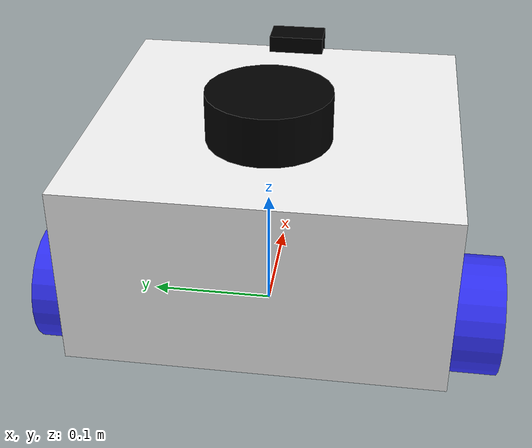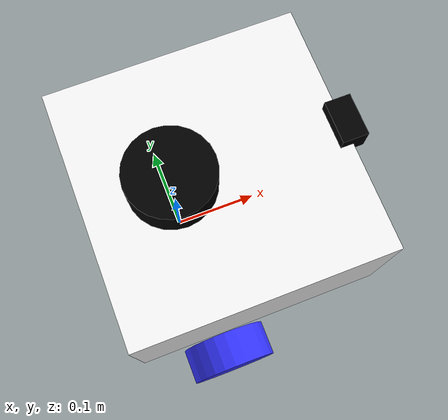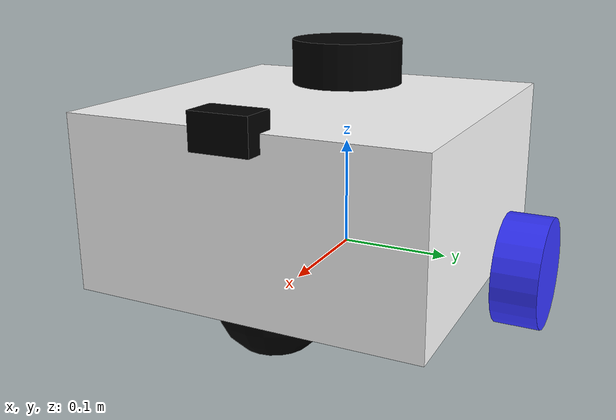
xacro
<?xml version="1.0"?>
<robot xmlns:xacro="http://www.ros.org/wiki/xacro" >

    <xacro:include filename="inertial_macros.xacro"/>

    <material name="white">
        <color rgba="1 1 1 1" />
    </material>

    <material name="orange">
        <color rgba="1 0.3 0.1 1"/>
    </material>

    <material name="blue">
        <color rgba="0.2 0.2 1 1"/>
    </material>

    <material name="black">
        <color rgba="0 0 0 1"/>
    </material>

    <!-- BASE LINK -->

    <link name="base_link">

    </link>

    <!-- CHASSIS LINK -->

    <joint name="chassis_joint" type="fixed">
        <parent link="base_link"/>
        <child link="chassis"/>
        <origin xyz="-0.1 0 0"/>
    </joint>

    <link name="chassis">
        <visual>
            <origin xyz="0.15 0 0.075"/>
            <geometry>
                <box size="0.3 0.3 0.15"/>
            </geometry>
            <material name="white"/>
        </visual>
        <collision>
            <origin xyz="0.15 0 0.075"/>
            <geometry>
                <box size="0.3 0.3 0.15"/>
            </geometry>
        </collision>
        <xacro:inertial_box mass="0.5" x="0.3" y="0.3" z="0.15">
            <origin xyz="0.15 0 0.075" rpy="0 0 0"/>
        </xacro:inertial_box>
    </link>

    <gazebo reference="chassis">
        <material>Gazebo/White</material>
    </gazebo>

    <!-- LEFT WHEEL LINK -->

    <joint name="left_wheel_joint" type="continuous">
        <parent link="base_link"/>
        <child link="left_wheel"/>
        <origin xyz="0 0.175 0" rpy="-${pi/2} 0 0" />
        <axis xyz="0 0 1"/>
    </joint>

    <link name="left_wheel">
        <visual>
            <geometry>
                <cylinder radius="0.05" length="0.04"/>
            </geometry>
            <material name="blue"/>
        </visual>
        <collision>
            <geometry>
                <cylinder radius="0.05" length="0.04"/>
            </geometry>
        </collision>
        <xacro:inertial_cylinder mass="0.1" length="0.04" radius="0.05">
            <origin xyz="0 0 0" rpy="0 0 0"/>
        </xacro:inertial_cylinder>
    </link>

    <gazebo reference="left_wheel">
        <material>Gazebo/Blue</material>
    </gazebo>

    <!-- RIGHT WHEEL LINK -->

    <joint name="right_wheel_joint" type="continuous">
        <parent link="base_link"/>
        <child link="right_wheel"/>
        <origin xyz="0 -0.175 0" rpy="${pi/2} 0 0" />
        <axis xyz="0 0 -1"/>
    </joint>

    <link name="right_wheel">
        <visual>
            <geometry>
                <cylinder radius="0.05" length="0.04"/>
            </geometry>
            <material name="blue"/>
        </visual>
        <collision>
            <geometry>
                <cylinder radius="0.05" length="0.04"/>
            </geometry>
        </collision>
        <xacro:inertial_cylinder mass="0.1" length="0.04" radius="0.05">
            <origin xyz="0 0 0" rpy="0 0 0"/>
        </xacro:inertial_cylinder>
    </link>

    <gazebo reference="right_wheel">
        <material>Gazebo/Blue</material>
    </gazebo>

    <!-- CASTER WHEEL LINK -->

    <joint name="caster_wheel_joint" type="fixed">
        <parent link="chassis"/>
        <child link="caster_wheel"/>
        <origin xyz="0.24 0 0"/>
    </joint>

    <link name="caster_wheel">
        <visual>
            <geometry>
                <sphere radius="0.05"/>
            </geometry>
            <material name="black"/>
        </visual>
        <collision>
            <geometry>
                <sphere radius="0.05"/>
            </geometry>
        </collision>
        <xacro:inertial_sphere mass="0.1" radius="0.05">
            <origin xyz="0 0 0" rpy="0 0 0"/>
        </xacro:inertial_sphere>
    </link>

    <gazebo reference="caster_wheel">
        <material>Gazebo/Black</material>
        <mu1 value="0.001"/>
        <mu2 value="0.001"/>
    </gazebo>
<!-- ==================== CAMERA ADDITION ==================== -->

    <!-- Camera Joint: Positioned at the front-top center of the chassis box -->
    <joint name="camera_joint" type="fixed">
        <parent link="chassis"/>
        <child link="camera_link"/>
        <origin xyz="0.30 0 0.15" rpy="0 0 0"/>
    </joint>

    <!-- Camera Physical Body Link -->
    <link name="camera_link">
        <visual>
            <geometry>
                <box size="0.03 0.05 0.03"/>
            </geometry>
            <material name="black"/>
        </visual>
        <collision>
            <geometry>
                <box size="0.03 0.05 0.03"/>
            </geometry>
        </collision>
        <!-- Adding physical mass property using your box macro -->
        <xacro:inertial_box mass="0.05" x="0.03" y="0.05" z="0.03">
            <origin xyz="0 0 0" rpy="0 0 0"/>
        </xacro:inertial_box>
    </link>

    <!-- Gazebo Sensor and ROS Bridge configuration -->
    <gazebo reference="camera_link">

        <sensor type="camera" name="robot_camera">
            <update_rate>30.0</update_rate>
            <visualize>true</visualize>
            <camera name="head">
                <horizontal_fov>1.3962634</horizontal_fov> <!-- ~80 deg field of view -->
                <image>
                    <width>640</width>
                    <height>480</height>
                    <format>R8G8B8</format>
                </image>
                <clip>
                    <near>0.05</near>
                    <far>8.0</far>
                </clip>
            </camera>

        </sensor>
    </gazebo>

    <joint name="lidar_joint" type="fixed">
    <parent link="chassis"/>
    <child link="lidar_link"/>
    <origin xyz="0.1 0 0.175" rpy="0 0 0"/>
  </joint>

  <link name="lidar_link">
    <visual>
      <geometry>
        <cylinder radius="0.05" length="0.04"/>
      </geometry>
      <material name="black"/>
    </visual>
    <collision>
      <geometry>
        <cylinder radius="0.05" length="0.04"/>
      </geometry>
    </collision>
    <inertial>
      <origin xyz="0 0 0" rpy="0 0 0"/>
      <mass value="0.1"/>
      <inertia ixx="0.0001" ixy="0.0" ixz="0.0" iyy="0.0001" iyz="0.0" izz="0.0001"/>
    </inertial>
  </link>

  <gazebo reference="lidar_link">
    <material>Gazebo/Black</material>
    <sensor type="gpu_lidar" name="robot_lidar">
      <pose>0 0 0 0 0 0</pose>
      <always_on>true</always_on>
      <update_rate>30.0</update_rate>
      <visualize>true</visualize>
      <topic>scan</topic>
      <gz_frame_id>robot/lidar_link</gz_frame_id>
      <ray>
        <scan>
          <horizontal>
            <samples>360</samples>
            <resolution>1</resolution>
            <min_angle>-3.141592</min_angle>
            <max_angle>3.141592</max_angle>
          </horizontal>
        </scan>
        <range>
          <min>0.45</min>
          <max>12.0</max>
          <resolution>0.01</resolution>
        </range>
      </ray>
    </sensor>
  </gazebo>
</robot>
